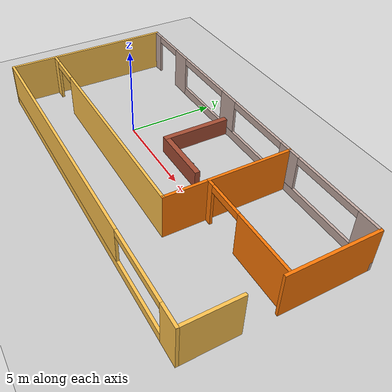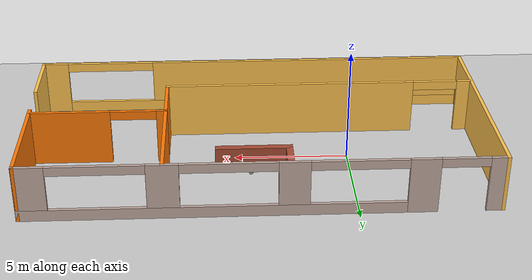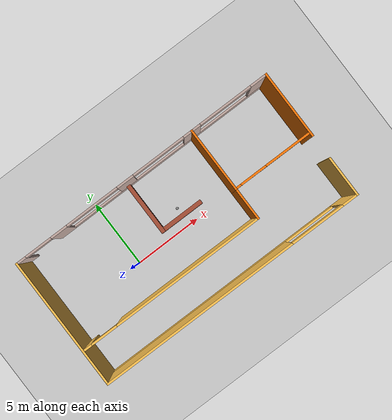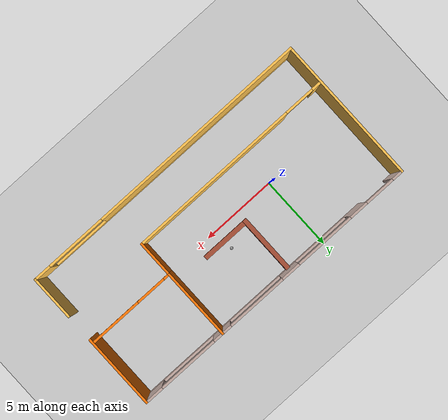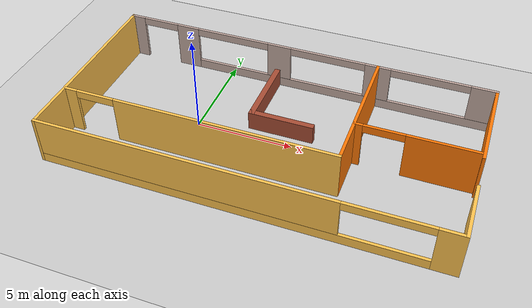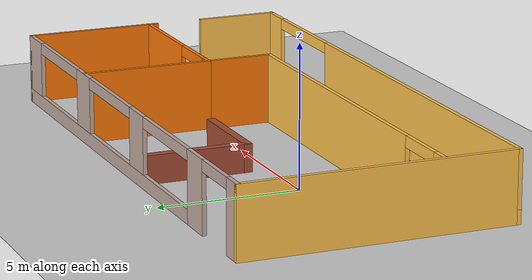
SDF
<sdf version="1.6">
 <world name="default">
  <model name="ground_plane">
   <static>1</static>
   <link name="link">
    <collision name="collision">
     <geometry><plane><normal>0 0 1</normal><size>100 100</size></plane></geometry>
     <surface>
      <contact><collide_bitmask>65535</collide_bitmask></contact>
      <friction><ode><mu>100</mu><mu2>50</mu2></ode></friction>
     </surface>
    </collision>
    <visual name="visual">
     <cast_shadows>0</cast_shadows>
     <geometry><plane><normal>0 0 1</normal><size>100 100</size></plane></geometry>
     <material>
      <script><uri>file://media/materials/scripts/gazebo.material</uri><name>Gazebo/Grey</name></script>
     </material>
    </visual>
   </link>
  </model>
  <model name="building_proj">
   <pose>4 0 0 0 -0 0</pose>
   <link name="Wall_20">
    <pose>-0 4.62544 0 0 -0 0</pose>
    <visual name="Wall_20_Visual_0">
     <pose>-9.60321 0 1.25 0 -0 0</pose>
     <geometry><box><size>0.793589 0.15 2.5</size></box></geometry>
     <material>
      <script><uri>file://media/materials/scripts/gazebo.material</uri><name>Gazebo/Grey</name></script>
      <ambient>0.760784 0.662745 0.627451 1</ambient>
     </material>
     <meta><layer>0</layer></meta>
    </visual>
    <collision name="Wall_20_Collision_0">
     <geometry><box><size>0.793589 0.15 2.5</size></box></geometry>
     <pose>-9.60321 0 1.25 0 -0 0</pose>
    </collision>
    <visual name="Wall_20_Visual_1">
     <pose>-6.57719 0 1.25 0 -0 0</pose>
     <geometry><box><size>1.25845 0.15 2.5</size></box></geometry>
     <material>
      <script><uri>file://media/materials/scripts/gazebo.material</uri><name>Gazebo/Grey</name></script>
      <ambient>0.760784 0.662745 0.627451 1</ambient>
     </material>
     <meta><layer>0</layer></meta>
    </visual>
    <collision name="Wall_20_Collision_1">
     <geometry><box><size>1.25845 0.15 2.5</size></box></geometry>
     <pose>-6.57719 0 1.25 0 -0 0</pose>
    </collision>
    <visual name="Wall_20_Visual_2">
     <pose>2.02602 0 0.25 0 -0 0</pose>
     <geometry><box><size>15.948 0.15 0.5</size></box></geometry>
     <material>
      <script><uri>file://media/materials/scripts/gazebo.material</uri><name>Gazebo/Grey</name></script>
      <ambient>0.760784 0.662745 0.627451 1</ambient>
     </material>
     <meta><layer>0</layer></meta>
    </visual>
    <collision name="Wall_20_Collision_2">
     <geometry><box><size>15.948 0.15 0.5</size></box></geometry>
     <pose>2.02602 0 0.25 0 -0 0</pose>
    </collision>
    <visual name="Wall_20_Visual_3">
     <pose>-1.30164 0 1.5 0 -0 0</pose>
     <geometry><box><size>1.29265 0.15 2</size></box></geometry>
     <material>
      <script><uri>file://media/materials/scripts/gazebo.material</uri><name>Gazebo/Grey</name></script>
      <ambient>0.760784 0.662745 0.627451 1</ambient>
     </material>
     <meta><layer>0</layer></meta>
    </visual>
    <collision name="Wall_20_Collision_3">
     <geometry><box><size>1.29265 0.15 2</size></box></geometry>
     <pose>-1.30164 0 1.5 0 -0 0</pose>
    </collision>
    <visual name="Wall_20_Visual_4">
     <pose>4.01382 0 1.5 0 -0 0</pose>
     <geometry><box><size>1.33827 0.15 2</size></box></geometry>
     <material>
      <script><uri>file://media/materials/scripts/gazebo.material</uri><name>Gazebo/Grey</name></script>
      <ambient>0.760784 0.662745 0.627451 1</ambient>
     </material>
     <meta><layer>0</layer></meta>
    </visual>
    <collision name="Wall_20_Collision_4">
     <geometry><box><size>1.33827 0.15 2</size></box></geometry>
     <pose>4.01382 0 1.5 0 -0 0</pose>
    </collision>
    <visual name="Wall_20_Visual_5">
     <pose>9.34148 0 1.5 0 -0 0</pose>
     <geometry><box><size>1.31705 0.15 2</size></box></geometry>
     <material>
      <script><uri>file://media/materials/scripts/gazebo.material</uri><name>Gazebo/Grey</name></script>
      <ambient>0.760784 0.662745 0.627451 1</ambient>
     </material>
     <meta><layer>0</layer></meta>
    </visual>
    <collision name="Wall_20_Collision_5">
     <geometry><box><size>1.31705 0.15 2</size></box></geometry>
     <pose>9.34148 0 1.5 0 -0 0</pose>
    </collision>
    <visual name="Wall_20_Visual_6">
     <pose>-8.20641 0 2.3 0 -0 0</pose>
     <geometry><box><size>2 0.15 0.4</size></box></geometry>
     <material>
      <script><uri>file://media/materials/scripts/gazebo.material</uri><name>Gazebo/Grey</name></script>
      <ambient>0.760784 0.662745 0.627451 1</ambient>
     </material>
     <meta><layer>0</layer></meta>
    </visual>
    <collision name="Wall_20_Collision_6">
     <geometry><box><size>2 0.15 0.4</size></box></geometry>
     <pose>-8.20641 0 2.3 0 -0 0</pose>
    </collision>
    <visual name="Wall_20_Visual_7">
     <pose>-3.94796 0 2.3 0 -0 0</pose>
     <geometry><box><size>4 0.15 0.4</size></box></geometry>
     <material>
      <script><uri>file://media/materials/scripts/gazebo.material</uri><name>Gazebo/Grey</name></script>
      <ambient>0.760784 0.662745 0.627451 1</ambient>
     </material>
     <meta><layer>0</layer></meta>
    </visual>
    <collision name="Wall_20_Collision_7">
     <geometry><box><size>4 0.15 0.4</size></box></geometry>
     <pose>-3.94796 0 2.3 0 -0 0</pose>
    </collision>
    <visual name="Wall_20_Visual_8">
     <pose>1.34468 0 2.3 0 -0 0</pose>
     <geometry><box><size>4 0.15 0.4</size></box></geometry>
     <material>
      <script><uri>file://media/materials/scripts/gazebo.material</uri><name>Gazebo/Grey</name></script>
      <ambient>0.760784 0.662745 0.627451 1</ambient>
     </material>
     <meta><layer>0</layer></meta>
    </visual>
    <collision name="Wall_20_Collision_8">
     <geometry><box><size>4 0.15 0.4</size></box></geometry>
     <pose>1.34468 0 2.3 0 -0 0</pose>
    </collision>
    <visual name="Wall_20_Visual_9">
     <pose>6.68295 0 2.3 0 -0 0</pose>
     <geometry><box><size>4 0.15 0.4</size></box></geometry>
     <material>
      <script><uri>file://media/materials/scripts/gazebo.material</uri><name>Gazebo/Grey</name></script>
      <ambient>0.760784 0.662745 0.627451 1</ambient>
     </material>
     <meta><layer>0</layer></meta>
    </visual>
    <collision name="Wall_20_Collision_9">
     <geometry><box><size>4 0.15 0.4</size></box></geometry>
     <pose>6.68295 0 2.3 0 -0 0</pose>
    </collision>
   </link>
   <link name="Wall_21">
    <collision name="Wall_21_Collision">
     <geometry><box><size>5 0.15 2.5</size></box></geometry>
     <pose>0 0 1.25 0 -0 0</pose>
    </collision>
    <visual name="Wall_21_Visual">
     <pose>0 0 1.25 0 -0 0</pose>
     <geometry><box><size>5 0.15 2.5</size></box></geometry>
     <material>
      <script><uri>file://media/materials/scripts/gazebo.material</uri><name>Gazebo/Grey</name></script>
      <ambient>0.996078 0.47451 0.0196078 1</ambient>
     </material>
     <meta><layer>0</layer></meta>
    </visual>
    <pose>9.925 2.20044 0 0 -0 -1.5708</pose>
   </link>
   <link name="Wall_23">
    <collision name="Wall_23_Collision">
     <geometry><box><size>3 0.15 2.5</size></box></geometry>
     <pose>0 0 1.25 0 -0 0</pose>
    </collision>
    <visual name="Wall_23_Visual">
     <pose>0 0 1.25 0 -0 0</pose>
     <geometry><box><size>3 0.15 2.5</size></box></geometry>
     <material>
      <script><uri>file://media/materials/scripts/gazebo.material</uri><name>Gazebo/Grey</name></script>
      <ambient>1 0.764706 0.305882 1</ambient>
     </material>
     <meta><layer>0</layer></meta>
    </visual>
    <pose>9.925 -3.49956 0 0 -0 -1.5708</pose>
   </link>
   <link name="Wall_24">
    <pose>-0 -4.92456 0 0 -0 3.14159</pose>
    <visual name="Wall_24_Visual_0">
     <pose>-9.39305 0 1.25 0 -0 0</pose>
     <geometry><box><size>1.21389 0.15 2.5</size></box></geometry>
     <material>
      <script><uri>file://media/materials/scripts/gazebo.material</uri><name>Gazebo/Grey</name></script>
      <ambient>1 0.764706 0.305882 1</ambient>
     </material>
     <meta><layer>0</layer></meta>
    </visual>
    <collision name="Wall_24_Collision_0">
     <geometry><box><size>1.21389 0.15 2.5</size></box></geometry>
     <pose>-9.39305 0 1.25 0 -0 0</pose>
    </collision>
    <visual name="Wall_24_Visual_1">
     <pose>0.606947 0 0.25 0 -0 0</pose>
     <geometry><box><size>18.7861 0.15 0.5</size></box></geometry>
     <material>
      <script><uri>file://media/materials/scripts/gazebo.material</uri><name>Gazebo/Grey</name></script>
      <ambient>1 0.764706 0.305882 1</ambient>
     </material>
     <meta><layer>0</layer></meta>
    </visual>
    <collision name="Wall_24_Collision_1">
     <geometry><box><size>18.7861 0.15 0.5</size></box></geometry>
     <pose>0.606947 0 0.25 0 -0 0</pose>
    </collision>
    <visual name="Wall_24_Visual_2">
     <pose>2.60695 0 1.5 0 -0 0</pose>
     <geometry><box><size>14.7861 0.15 2</size></box></geometry>
     <material>
      <script><uri>file://media/materials/scripts/gazebo.material</uri><name>Gazebo/Grey</name></script>
      <ambient>1 0.764706 0.305882 1</ambient>
     </material>
     <meta><layer>0</layer></meta>
    </visual>
    <collision name="Wall_24_Collision_2">
     <geometry><box><size>14.7861 0.15 2</size></box></geometry>
     <pose>2.60695 0 1.5 0 -0 0</pose>
    </collision>
    <visual name="Wall_24_Visual_3">
     <pose>-6.78611 0 2.3 0 -0 0</pose>
     <geometry><box><size>4 0.15 0.4</size></box></geometry>
     <material>
      <script><uri>file://media/materials/scripts/gazebo.material</uri><name>Gazebo/Grey</name></script>
      <ambient>1 0.764706 0.305882 1</ambient>
     </material>
     <meta><layer>0</layer></meta>
    </visual>
    <collision name="Wall_24_Collision_3">
     <geometry><box><size>4 0.15 0.4</size></box></geometry>
     <pose>-6.78611 0 2.3 0 -0 0</pose>
    </collision>
   </link>
   <link name="Wall_25">
    <collision name="Wall_25_Collision">
     <geometry><box><size>9.7 0.15 2.5</size></box></geometry>
     <pose>0 0 1.25 0 -0 0</pose>
    </collision>
    <visual name="Wall_25_Visual">
     <pose>0 0 1.25 0 -0 0</pose>
     <geometry><box><size>9.7 0.15 2.5</size></box></geometry>
     <material>
      <script><uri>file://media/materials/scripts/gazebo.material</uri><name>Gazebo/Grey</name></script>
      <ambient>1 0.764706 0.305882 1</ambient>
     </material>
     <meta><layer>0</layer></meta>
    </visual>
    <pose>-9.925 -0.149558 0 0 -0 1.5708</pose>
   </link>
   <link name="Wall_49">
    <collision name="Wall_49_Collision">
     <geometry><box><size>4.75 0.15 2.5</size></box></geometry>
     <pose>0 0 1.25 0 -0 0</pose>
    </collision>
    <visual name="Wall_49_Visual">
     <pose>0 0 1.25 0 -0 0</pose>
     <geometry><box><size>4.75 0.15 2.5</size></box></geometry>
     <material>
      <script><uri>file://media/materials/scripts/gazebo.material</uri><name>Gazebo/Grey</name></script>
      <ambient>0.996078 0.47451 0.0196078 1</ambient>
     </material>
     <meta><layer>0</layer></meta>
    </visual>
    <pose>4.01102 2.32197 0 0 -0 -1.5708</pose>
   </link>
   <link name="Wall_50">
    <pose>6.93602 0.021971 0 0 -0 0</pose>
    <visual name="Wall_50_Visual_0">
     <pose>-2.75702 0 1.25 0 -0 0</pose>
     <geometry><box><size>0.485967 0.15 2.5</size></box></geometry>
     <material>
      <script><uri>file://media/materials/scripts/gazebo.material</uri><name>Gazebo/Grey</name></script>
      <ambient>0.996078 0.47451 0.0196078 1</ambient>
     </material>
     <meta><layer>0</layer></meta>
    </visual>
    <collision name="Wall_50_Collision_0">
     <geometry><box><size>0.485967 0.15 2.5</size></box></geometry>
     <pose>-2.75702 0 1.25 0 -0 0</pose>
    </collision>
    <visual name="Wall_50_Visual_1">
     <pose>1.24298 0 1.25 0 -0 0</pose>
     <geometry><box><size>3.51403 0.15 2.5</size></box></geometry>
     <material>
      <script><uri>file://media/materials/scripts/gazebo.material</uri><name>Gazebo/Grey</name></script>
      <ambient>0.996078 0.47451 0.0196078 1</ambient>
     </material>
     <meta><layer>0</layer></meta>
    </visual>
    <collision name="Wall_50_Collision_1">
     <geometry><box><size>3.51403 0.15 2.5</size></box></geometry>
     <pose>1.24298 0 1.25 0 -0 0</pose>
    </collision>
    <visual name="Wall_50_Visual_2">
     <pose>-1.51403 0 2.3 0 -0 0</pose>
     <geometry><box><size>2 0.15 0.4</size></box></geometry>
     <material>
      <script><uri>file://media/materials/scripts/gazebo.material</uri><name>Gazebo/Grey</name></script>
      <ambient>0.996078 0.47451 0.0196078 1</ambient>
     </material>
     <meta><layer>0</layer></meta>
    </visual>
    <collision name="Wall_50_Collision_2">
     <geometry><box><size>2 0.15 0.4</size></box></geometry>
     <pose>-1.51403 0 2.3 0 -0 0</pose>
    </collision>
   </link>
   <link name="Wall_52">
    <collision name="Wall_52_Collision">
     <geometry><box><size>2.5 0.15 2.5</size></box></geometry>
     <pose>0 0 1.25 0 -0 0</pose>
    </collision>
    <visual name="Wall_52_Visual">
     <pose>0 0 1.25 0 -0 0</pose>
     <geometry><box><size>2.5 0.15 2.5</size></box></geometry>
     <material>
      <script><uri>file://media/materials/scripts/gazebo.material</uri><name>Gazebo/Grey</name></script>
      <ambient>0.996078 0.47451 0.0196078 1</ambient>
     </material>
     <meta><layer>0</layer></meta>
    </visual>
    <pose>4.01102 -1.15303 0 0 -0 -1.5708</pose>
   </link>
   <link name="Wall_53">
    <pose>-2.91398 -2.32803 0 0 -0 3.14159</pose>
    <visual name="Wall_53_Visual_0">
     <pose>-1.33289 0 1.25 0 -0 0</pose>
     <geometry><box><size>11.3342 0.15 2.5</size></box></geometry>
     <material>
      <script><uri>file://media/materials/scripts/gazebo.material</uri><name>Gazebo/Grey</name></script>
      <ambient>1 0.764706 0.305882 1</ambient>
     </material>
     <meta><layer>0</layer></meta>
    </visual>
    <collision name="Wall_53_Collision_0">
     <geometry><box><size>11.3342 0.15 2.5</size></box></geometry>
     <pose>-1.33289 0 1.25 0 -0 0</pose>
    </collision>
    <visual name="Wall_53_Visual_1">
     <pose>6.66711 0 1.25 0 -0 0</pose>
     <geometry><box><size>0.665778 0.15 2.5</size></box></geometry>
     <material>
      <script><uri>file://media/materials/scripts/gazebo.material</uri><name>Gazebo/Grey</name></script>
      <ambient>1 0.764706 0.305882 1</ambient>
     </material>
     <meta><layer>0</layer></meta>
    </visual>
    <collision name="Wall_53_Collision_1">
     <geometry><box><size>0.665778 0.15 2.5</size></box></geometry>
     <pose>6.66711 0 1.25 0 -0 0</pose>
    </collision>
    <visual name="Wall_53_Visual_2">
     <pose>5.33422 0 2.3 0 -0 0</pose>
     <geometry><box><size>2 0.15 0.4</size></box></geometry>
     <material>
      <script><uri>file://media/materials/scripts/gazebo.material</uri><name>Gazebo/Grey</name></script>
      <ambient>1 0.764706 0.305882 1</ambient>
     </material>
     <meta><layer>0</layer></meta>
    </visual>
    <collision name="Wall_53_Collision_2">
     <geometry><box><size>2 0.15 0.4</size></box></geometry>
     <pose>5.33422 0 2.3 0 -0 0</pose>
    </collision>
   </link>
   <link name="Wall_55">
    <collision name="Wall_55_Collision">
     <geometry><box><size>4 0.3 1</size></box></geometry>
     <pose>0 0 0.5 0 -0 0</pose>
    </collision>
    <visual name="Wall_55_Visual">
     <pose>0 0 0.5 0 -0 0</pose>
     <geometry><box><size>4 0.3 1</size></box></geometry>
     <material>
      <script><uri>file://media/materials/scripts/gazebo.material</uri><name>Gazebo/Bricks</name></script>
      <ambient>1 1 1 1</ambient>
     </material>
     <meta><layer>0</layer></meta>
    </visual>
    <pose>-1.35578 2.62156 0 0 -0 -1.5708</pose>
   </link>
   <link name="Wall_56">
    <collision name="Wall_56_Collision">
     <geometry><box><size>3.40049 0.3 1</size></box></geometry>
     <pose>0 0 0.5 0 -0 0</pose>
    </collision>
    <visual name="Wall_56_Visual">
     <pose>0 0 0.5 0 -0 0</pose>
     <geometry><box><size>3.40049 0.3 1</size></box></geometry>
     <material>
      <script><uri>file://media/materials/scripts/gazebo.material</uri><name>Gazebo/Bricks</name></script>
      <ambient>1 1 1 1</ambient>
     </material>
     <meta><layer>0</layer></meta>
    </visual>
    <pose>0.194224 0.771557 0 0 -0 0</pose>
   </link>
   <static>1</static>
  </model>
  <model name="my_ball">
   <link name="link">
    <inertial>
     <mass>1</mass>
     <inertia><ixx>0.1</ixx><ixy>0</ixy><ixz>0</ixz><iyy>0.1</iyy><iyz>0</iyz><izz>0.1</izz></inertia>
    </inertial>
    <visual name="visual">
     <geometry><sphere><radius>0.1</radius></sphere></geometry>
     <material>
      <script><name>Gazebo/Grey</name><uri>file://media/materials/scripts/gazebo.material</uri></script>
      <shader type="pixel"><normal_map>__default__</normal_map></shader>
      <ambient>1 1 1 1</ambient>
      <diffuse>1 1 1 1</diffuse>
      <specular>1 1 1 1</specular>
      <emissive>1 1 1 1</emissive>
     </material>
    </visual>
    <collision name="collision">
     <geometry><sphere><radius>0.1</radius></sphere></geometry>
     <surface>
      <friction>
       <ode><mu>1</mu><mu2>1</mu2><fdir1>0 0 0</fdir1><slip1>0</slip1><slip2>0</slip2></ode>
       <torsional>
        <coefficient>1</coefficient>
        <patch_radius>0</patch_radius>
        <surface_radius>0</surface_radius>
        <use_patch_radius>1</use_patch_radius>
        <ode><slip>0</slip></ode>
       </torsional>
      </friction>
      <bounce><restitution_coefficient>0</restitution_coefficient><threshold>1e+06</threshold></bounce>
      <contact>
       <collide_without_contact>0</collide_without_contact>
       <collide_without_contact_bitmask>1</collide_without_contact_bitmask>
       <collide_bitmask>1</collide_bitmask>
       <ode>
        <soft_cfm>0</soft_cfm>
        <soft_erp>0.2</soft_erp>
        <kp>1e+13</kp>
        <kd>1</kd>
        <max_vel>0.01</max_vel>
        <min_depth>0</min_depth>
       </ode>
       <bullet>
        <split_impulse>1</split_impulse>
        <split_impulse_penetration_threshold>-0.01</split_impulse_penetration_threshold>
        <soft_cfm>0</soft_cfm>
        <soft_erp>0.2</soft_erp>
        <kp>1e+13</kp>
        <kd>1</kd>
       </bullet>
      </contact>
     </surface>
    </collision>
   </link>
   <static>0</static>
   <pose>4.33702 1.40493 0.1 0 -0 0</pose>
  </model>
 </world>
</sdf>
